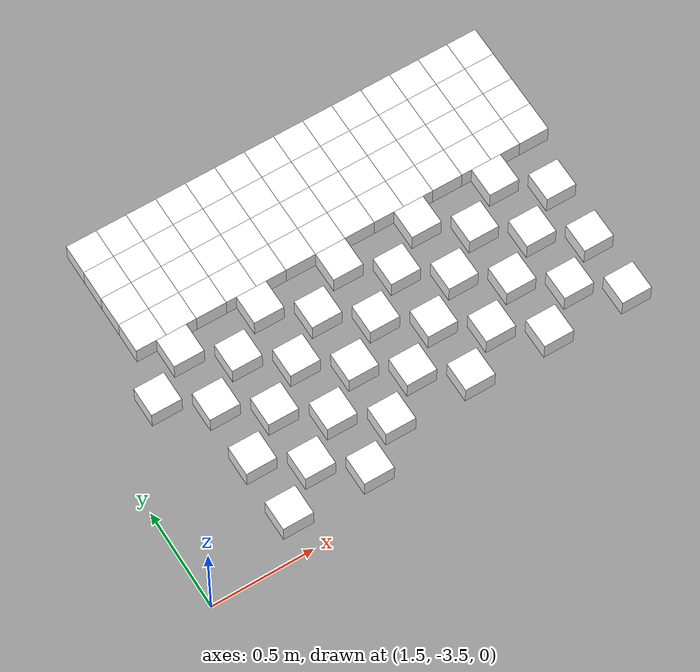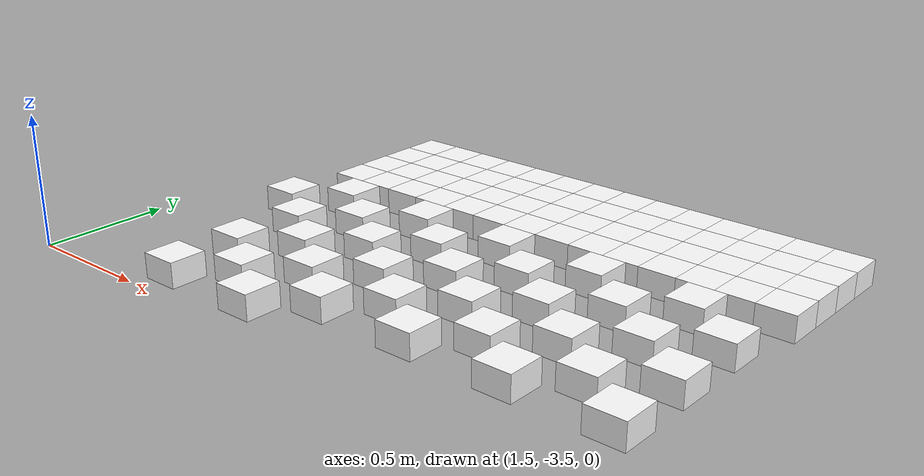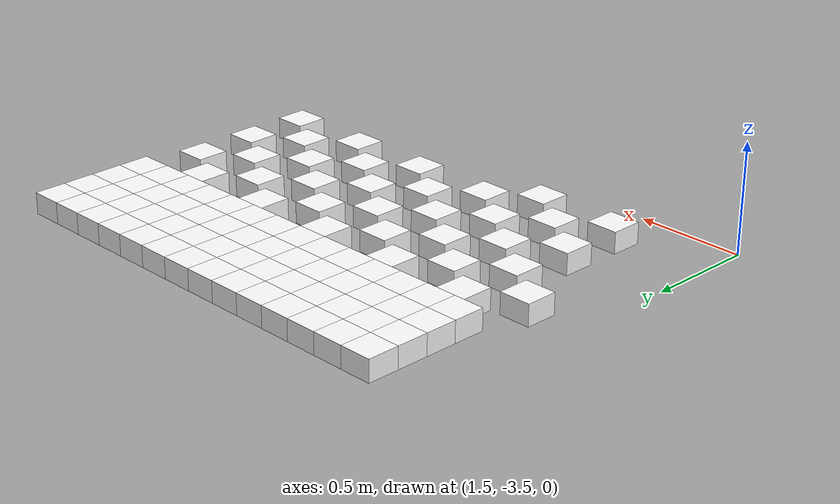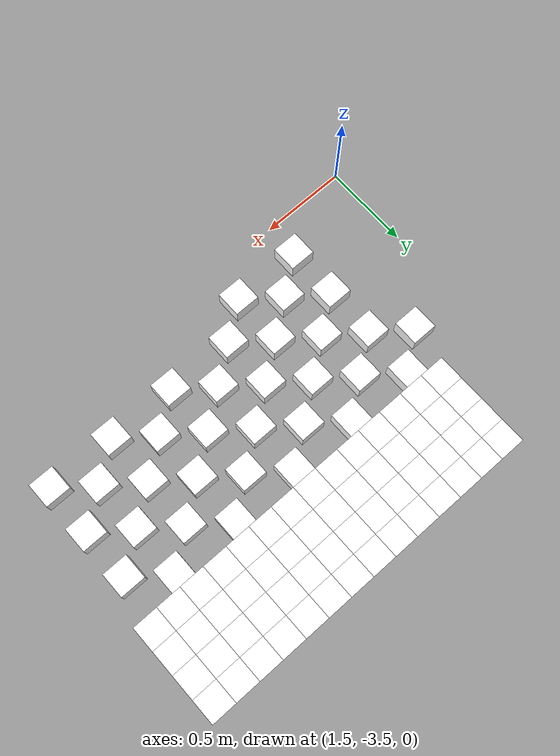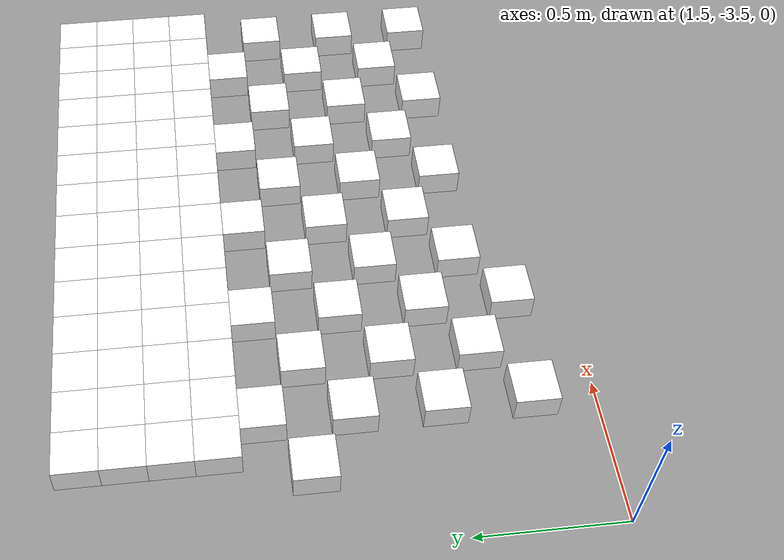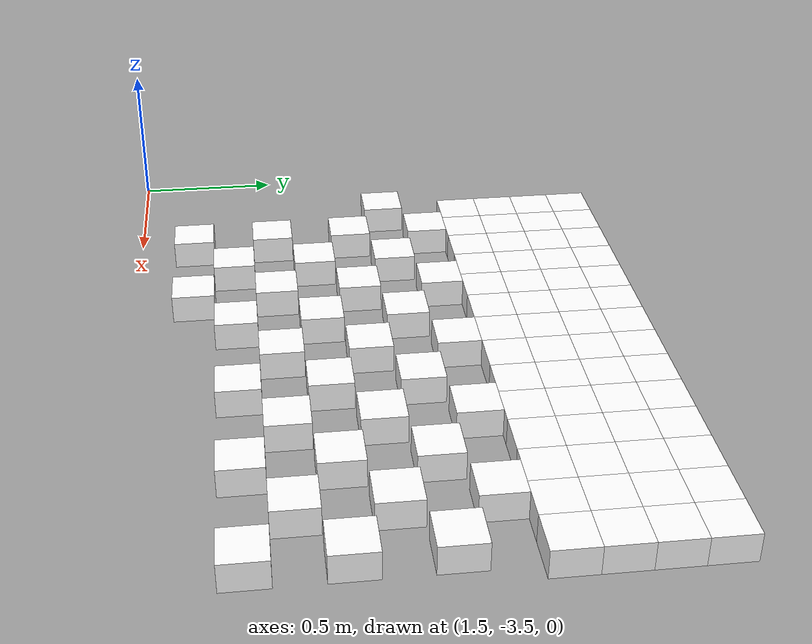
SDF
<sdf version="1.7">
 <world name="default">
  <include><uri>model://sun</uri></include>
  <model name="static_environment">
   <static>true</static>
   <link name="region_536">
    <pose>1.899786431637882 -1.8003470139988216 0.0 0.0 0.0 4.7123</pose>
    <collision name="region_536_collision">
     <geometry><box><size>0.15 0.15 0.1</size></box></geometry>
     <surface><friction><ode><mu>1.0</mu><mu2>1.0</mu2></ode></friction></surface>
    </collision>
    <visual name="region_536_visual">
     <geometry><box><size>0.15 0.15 0.1</size></box></geometry>
     <material><ambient>1.0 1.0 1.0 1.0</ambient><diffuse>1.0 1.0 1.0 1.0</diffuse></material>
    </visual>
   </link>
   <link name="region_537">
    <pose>1.8997730845801963 -1.9503470134050085 0.0 0.0 0.0 4.7123</pose>
    <collision name="region_537_collision">
     <geometry><box><size>0.15 0.15 0.1</size></box></geometry>
     <surface><friction><ode><mu>1.0</mu><mu2>1.0</mu2></ode></friction></surface>
    </collision>
    <visual name="region_537_visual">
     <geometry><box><size>0.15 0.15 0.1</size></box></geometry>
     <material><ambient>1.0 1.0 1.0 1.0</ambient><diffuse>1.0 1.0 1.0 1.0</diffuse></material>
    </visual>
   </link>
   <link name="region_538">
    <pose>1.8997597375225106 -2.100347012811195 0.0 0.0 0.0 4.7123</pose>
    <collision name="region_538_collision">
     <geometry><box><size>0.15 0.15 0.1</size></box></geometry>
     <surface><friction><ode><mu>1.0</mu><mu2>1.0</mu2></ode></friction></surface>
    </collision>
    <visual name="region_538_visual">
     <geometry><box><size>0.15 0.15 0.1</size></box></geometry>
     <material><ambient>1.0 1.0 1.0 1.0</ambient><diffuse>1.0 1.0 1.0 1.0</diffuse></material>
    </visual>
   </link>
   <link name="region_539">
    <pose>1.8997463904648244 -2.250347012217382 0.0 0.0 0.0 4.7123</pose>
    <collision name="region_539_collision">
     <geometry><box><size>0.15 0.15 0.1</size></box></geometry>
     <surface><friction><ode><mu>1.0</mu><mu2>1.0</mu2></ode></friction></surface>
    </collision>
    <visual name="region_539_visual">
     <geometry><box><size>0.15 0.15 0.1</size></box></geometry>
     <material><ambient>1.0 1.0 1.0 1.0</ambient><diffuse>1.0 1.0 1.0 1.0</diffuse></material>
    </visual>
   </link>
   <link name="region_556">
    <pose>2.04978643104407 -1.8003603610565073 0.0 0.0 0.0 4.7123</pose>
    <collision name="region_556_collision">
     <geometry><box><size>0.15 0.15 0.1</size></box></geometry>
     <surface><friction><ode><mu>1.0</mu><mu2>1.0</mu2></ode></friction></surface>
    </collision>
    <visual name="region_556_visual">
     <geometry><box><size>0.15 0.15 0.1</size></box></geometry>
     <material><ambient>1.0 1.0 1.0 1.0</ambient><diffuse>1.0 1.0 1.0 1.0</diffuse></material>
    </visual>
   </link>
   <link name="region_557">
    <pose>2.0497730839863832 -1.9503603604626942 0.0 0.0 0.0 4.7123</pose>
    <collision name="region_557_collision">
     <geometry><box><size>0.15 0.15 0.1</size></box></geometry>
     <surface><friction><ode><mu>1.0</mu><mu2>1.0</mu2></ode></friction></surface>
    </collision>
    <visual name="region_557_visual">
     <geometry><box><size>0.15 0.15 0.1</size></box></geometry>
     <material><ambient>1.0 1.0 1.0 1.0</ambient><diffuse>1.0 1.0 1.0 1.0</diffuse></material>
    </visual>
   </link>
   <link name="region_558">
    <pose>2.0497597369286975 -2.1003603598688807 0.0 0.0 0.0 4.7123</pose>
    <collision name="region_558_collision">
     <geometry><box><size>0.15 0.15 0.1</size></box></geometry>
     <surface><friction><ode><mu>1.0</mu><mu2>1.0</mu2></ode></friction></surface>
    </collision>
    <visual name="region_558_visual">
     <geometry><box><size>0.15 0.15 0.1</size></box></geometry>
     <material><ambient>1.0 1.0 1.0 1.0</ambient><diffuse>1.0 1.0 1.0 1.0</diffuse></material>
    </visual>
   </link>
   <link name="region_559">
    <pose>2.0497463898710118 -2.2503603592750676 0.0 0.0 0.0 4.7123</pose>
    <collision name="region_559_collision">
     <geometry><box><size>0.15 0.15 0.1</size></box></geometry>
     <surface><friction><ode><mu>1.0</mu><mu2>1.0</mu2></ode></friction></surface>
    </collision>
    <visual name="region_559_visual">
     <geometry><box><size>0.15 0.15 0.1</size></box></geometry>
     <material><ambient>1.0 1.0 1.0 1.0</ambient><diffuse>1.0 1.0 1.0 1.0</diffuse></material>
    </visual>
   </link>
   <link name="region_576">
    <pose>2.1997864304502572 -1.800373708114193 0.0 0.0 0.0 4.7123</pose>
    <collision name="region_576_collision">
     <geometry><box><size>0.15 0.15 0.1</size></box></geometry>
     <surface><friction><ode><mu>1.0</mu><mu2>1.0</mu2></ode></friction></surface>
    </collision>
    <visual name="region_576_visual">
     <geometry><box><size>0.15 0.15 0.1</size></box></geometry>
     <material><ambient>1.0 1.0 1.0 1.0</ambient><diffuse>1.0 1.0 1.0 1.0</diffuse></material>
    </visual>
   </link>
   <link name="region_577">
    <pose>2.1997730833925706 -1.95037370752038 0.0 0.0 0.0 4.7123</pose>
    <collision name="region_577_collision">
     <geometry><box><size>0.15 0.15 0.1</size></box></geometry>
     <surface><friction><ode><mu>1.0</mu><mu2>1.0</mu2></ode></friction></surface>
    </collision>
    <visual name="region_577_visual">
     <geometry><box><size>0.15 0.15 0.1</size></box></geometry>
     <material><ambient>1.0 1.0 1.0 1.0</ambient><diffuse>1.0 1.0 1.0 1.0</diffuse></material>
    </visual>
   </link>
   <link name="region_578">
    <pose>2.199759736334885 -2.1003737069265664 0.0 0.0 0.0 4.7123</pose>
    <collision name="region_578_collision">
     <geometry><box><size>0.15 0.15 0.1</size></box></geometry>
     <surface><friction><ode><mu>1.0</mu><mu2>1.0</mu2></ode></friction></surface>
    </collision>
    <visual name="region_578_visual">
     <geometry><box><size>0.15 0.15 0.1</size></box></geometry>
     <material><ambient>1.0 1.0 1.0 1.0</ambient><diffuse>1.0 1.0 1.0 1.0</diffuse></material>
    </visual>
   </link>
   <link name="region_579">
    <pose>2.199746389277199 -2.2503737063327534 0.0 0.0 0.0 4.7123</pose>
    <collision name="region_579_collision">
     <geometry><box><size>0.15 0.15 0.1</size></box></geometry>
     <surface><friction><ode><mu>1.0</mu><mu2>1.0</mu2></ode></friction></surface>
    </collision>
    <visual name="region_579_visual">
     <geometry><box><size>0.15 0.15 0.1</size></box></geometry>
     <material><ambient>1.0 1.0 1.0 1.0</ambient><diffuse>1.0 1.0 1.0 1.0</diffuse></material>
    </visual>
   </link>
   <link name="region_596">
    <pose>2.3497864298564446 -1.8003870551718792 0.0 0.0 0.0 4.7123</pose>
    <collision name="region_596_collision">
     <geometry><box><size>0.15 0.15 0.1</size></box></geometry>
     <surface><friction><ode><mu>1.0</mu><mu2>1.0</mu2></ode></friction></surface>
    </collision>
    <visual name="region_596_visual">
     <geometry><box><size>0.15 0.15 0.1</size></box></geometry>
     <material><ambient>1.0 1.0 1.0 1.0</ambient><diffuse>1.0 1.0 1.0 1.0</diffuse></material>
    </visual>
   </link>
   <link name="region_597">
    <pose>2.349773082798758 -1.9503870545780662 0.0 0.0 0.0 4.7123</pose>
    <collision name="region_597_collision">
     <geometry><box><size>0.15 0.15 0.1</size></box></geometry>
     <surface><friction><ode><mu>1.0</mu><mu2>1.0</mu2></ode></friction></surface>
    </collision>
    <visual name="region_597_visual">
     <geometry><box><size>0.15 0.15 0.1</size></box></geometry>
     <material><ambient>1.0 1.0 1.0 1.0</ambient><diffuse>1.0 1.0 1.0 1.0</diffuse></material>
    </visual>
   </link>
   <link name="region_598">
    <pose>2.349759735741072 -2.1003870539842526 0.0 0.0 0.0 4.7123</pose>
    <collision name="region_598_collision">
     <geometry><box><size>0.15 0.15 0.1</size></box></geometry>
     <surface><friction><ode><mu>1.0</mu><mu2>1.0</mu2></ode></friction></surface>
    </collision>
    <visual name="region_598_visual">
     <geometry><box><size>0.15 0.15 0.1</size></box></geometry>
     <material><ambient>1.0 1.0 1.0 1.0</ambient><diffuse>1.0 1.0 1.0 1.0</diffuse></material>
    </visual>
   </link>
   <link name="region_599">
    <pose>2.3497463886833865 -2.2503870533904395 0.0 0.0 0.0 4.7123</pose>
    <collision name="region_599_collision">
     <geometry><box><size>0.15 0.15 0.1</size></box></geometry>
     <surface><friction><ode><mu>1.0</mu><mu2>1.0</mu2></ode></friction></surface>
    </collision>
    <visual name="region_599_visual">
     <geometry><box><size>0.15 0.15 0.1</size></box></geometry>
     <material><ambient>1.0 1.0 1.0 1.0</ambient><diffuse>1.0 1.0 1.0 1.0</diffuse></material>
    </visual>
   </link>
   <link name="region_616">
    <pose>2.499786429262631 -1.800400402229565 0.0 0.0 0.0 4.7123</pose>
    <collision name="region_616_collision">
     <geometry><box><size>0.15 0.15 0.1</size></box></geometry>
     <surface><friction><ode><mu>1.0</mu><mu2>1.0</mu2></ode></friction></surface>
    </collision>
    <visual name="region_616_visual">
     <geometry><box><size>0.15 0.15 0.1</size></box></geometry>
     <material><ambient>1.0 1.0 1.0 1.0</ambient><diffuse>1.0 1.0 1.0 1.0</diffuse></material>
    </visual>
   </link>
   <link name="region_617">
    <pose>2.4997730822049444 -1.950400401635752 0.0 0.0 0.0 4.7123</pose>
    <collision name="region_617_collision">
     <geometry><box><size>0.15 0.15 0.1</size></box></geometry>
     <surface><friction><ode><mu>1.0</mu><mu2>1.0</mu2></ode></friction></surface>
    </collision>
    <visual name="region_617_visual">
     <geometry><box><size>0.15 0.15 0.1</size></box></geometry>
     <material><ambient>1.0 1.0 1.0 1.0</ambient><diffuse>1.0 1.0 1.0 1.0</diffuse></material>
    </visual>
   </link>
   <link name="region_618">
    <pose>2.4997597351472587 -2.1004004010419384 0.0 0.0 0.0 4.7123</pose>
    <collision name="region_618_collision">
     <geometry><box><size>0.15 0.15 0.1</size></box></geometry>
     <surface><friction><ode><mu>1.0</mu><mu2>1.0</mu2></ode></friction></surface>
    </collision>
    <visual name="region_618_visual">
     <geometry><box><size>0.15 0.15 0.1</size></box></geometry>
     <material><ambient>1.0 1.0 1.0 1.0</ambient><diffuse>1.0 1.0 1.0 1.0</diffuse></material>
    </visual>
   </link>
   <link name="region_619">
    <pose>2.499746388089573 -2.2504004004481253 0.0 0.0 0.0 4.7123</pose>
    <collision name="region_619_collision">
     <geometry><box><size>0.15 0.15 0.1</size></box></geometry>
     <surface><friction><ode><mu>1.0</mu><mu2>1.0</mu2></ode></friction></surface>
    </collision>
    <visual name="region_619_visual">
     <geometry><box><size>0.15 0.15 0.1</size></box></geometry>
     <material><ambient>1.0 1.0 1.0 1.0</ambient><diffuse>1.0 1.0 1.0 1.0</diffuse></material>
    </visual>
   </link>
   <link name="region_636">
    <pose>2.6497864286688184 -1.8004137492872507 0.0 0.0 0.0 4.7123</pose>
    <collision name="region_636_collision">
     <geometry><box><size>0.15 0.15 0.1</size></box></geometry>
     <surface><friction><ode><mu>1.0</mu><mu2>1.0</mu2></ode></friction></surface>
    </collision>
    <visual name="region_636_visual">
     <geometry><box><size>0.15 0.15 0.1</size></box></geometry>
     <material><ambient>1.0 1.0 1.0 1.0</ambient><diffuse>1.0 1.0 1.0 1.0</diffuse></material>
    </visual>
   </link>
   <link name="region_637">
    <pose>2.649773081611132 -1.9504137486934376 0.0 0.0 0.0 4.7123</pose>
    <collision name="region_637_collision">
     <geometry><box><size>0.15 0.15 0.1</size></box></geometry>
     <surface><friction><ode><mu>1.0</mu><mu2>1.0</mu2></ode></friction></surface>
    </collision>
    <visual name="region_637_visual">
     <geometry><box><size>0.15 0.15 0.1</size></box></geometry>
     <material><ambient>1.0 1.0 1.0 1.0</ambient><diffuse>1.0 1.0 1.0 1.0</diffuse></material>
    </visual>
   </link>
   <link name="region_638">
    <pose>2.649759734553446 -2.100413748099624 0.0 0.0 0.0 4.7123</pose>
    <collision name="region_638_collision">
     <geometry><box><size>0.15 0.15 0.1</size></box></geometry>
     <surface><friction><ode><mu>1.0</mu><mu2>1.0</mu2></ode></friction></surface>
    </collision>
    <visual name="region_638_visual">
     <geometry><box><size>0.15 0.15 0.1</size></box></geometry>
     <material><ambient>1.0 1.0 1.0 1.0</ambient><diffuse>1.0 1.0 1.0 1.0</diffuse></material>
    </visual>
   </link>
   <link name="region_639">
    <pose>2.6497463874957603 -2.250413747505811 0.0 0.0 0.0 4.7123</pose>
    <collision name="region_639_collision">
     <geometry><box><size>0.15 0.15 0.1</size></box></geometry>
     <surface><friction><ode><mu>1.0</mu><mu2>1.0</mu2></ode></friction></surface>
    </collision>
    <visual name="region_639_visual">
     <geometry><box><size>0.15 0.15 0.1</size></box></geometry>
     <material><ambient>1.0 1.0 1.0 1.0</ambient><diffuse>1.0 1.0 1.0 1.0</diffuse></material>
    </visual>
   </link>
   <link name="region_656">
    <pose>2.7997864280750058 -1.800427096344937 0.0 0.0 0.0 4.7123</pose>
    <collision name="region_656_collision">
     <geometry><box><size>0.15 0.15 0.1</size></box></geometry>
     <surface><friction><ode><mu>1.0</mu><mu2>1.0</mu2></ode></friction></surface>
    </collision>
    <visual name="region_656_visual">
     <geometry><box><size>0.15 0.15 0.1</size></box></geometry>
     <material><ambient>1.0 1.0 1.0 1.0</ambient><diffuse>1.0 1.0 1.0 1.0</diffuse></material>
    </visual>
   </link>
   <link name="region_657">
    <pose>2.799773081017319 -1.9504270957511238 0.0 0.0 0.0 4.7123</pose>
    <collision name="region_657_collision">
     <geometry><box><size>0.15 0.15 0.1</size></box></geometry>
     <surface><friction><ode><mu>1.0</mu><mu2>1.0</mu2></ode></friction></surface>
    </collision>
    <visual name="region_657_visual">
     <geometry><box><size>0.15 0.15 0.1</size></box></geometry>
     <material><ambient>1.0 1.0 1.0 1.0</ambient><diffuse>1.0 1.0 1.0 1.0</diffuse></material>
    </visual>
   </link>
   <link name="region_658">
    <pose>2.7997597339596334 -2.1004270951573103 0.0 0.0 0.0 4.7123</pose>
    <collision name="region_658_collision">
     <geometry><box><size>0.15 0.15 0.1</size></box></geometry>
     <surface><friction><ode><mu>1.0</mu><mu2>1.0</mu2></ode></friction></surface>
    </collision>
    <visual name="region_658_visual">
     <geometry><box><size>0.15 0.15 0.1</size></box></geometry>
     <material><ambient>1.0 1.0 1.0 1.0</ambient><diffuse>1.0 1.0 1.0 1.0</diffuse></material>
    </visual>
   </link>
   <link name="region_659">
    <pose>2.7997463869019477 -2.250427094563497 0.0 0.0 0.0 4.7123</pose>
    <collision name="region_659_collision">
     <geometry><box><size>0.15 0.15 0.1</size></box></geometry>
     <surface><friction><ode><mu>1.0</mu><mu2>1.0</mu2></ode></friction></surface>
    </collision>
    <visual name="region_659_visual">
     <geometry><box><size>0.15 0.15 0.1</size></box></geometry>
     <material><ambient>1.0 1.0 1.0 1.0</ambient><diffuse>1.0 1.0 1.0 1.0</diffuse></material>
    </visual>
   </link>
   <link name="region_676">
    <pose>2.949786427481193 -1.8004404434026227 0.0 0.0 0.0 4.7123</pose>
    <collision name="region_676_collision">
     <geometry><box><size>0.15 0.15 0.1</size></box></geometry>
     <surface><friction><ode><mu>1.0</mu><mu2>1.0</mu2></ode></friction></surface>
    </collision>
    <visual name="region_676_visual">
     <geometry><box><size>0.15 0.15 0.1</size></box></geometry>
     <material><ambient>1.0 1.0 1.0 1.0</ambient><diffuse>1.0 1.0 1.0 1.0</diffuse></material>
    </visual>
   </link>
   <link name="region_677">
    <pose>2.9497730804235065 -1.9504404428088096 0.0 0.0 0.0 4.7123</pose>
    <collision name="region_677_collision">
     <geometry><box><size>0.15 0.15 0.1</size></box></geometry>
     <surface><friction><ode><mu>1.0</mu><mu2>1.0</mu2></ode></friction></surface>
    </collision>
    <visual name="region_677_visual">
     <geometry><box><size>0.15 0.15 0.1</size></box></geometry>
     <material><ambient>1.0 1.0 1.0 1.0</ambient><diffuse>1.0 1.0 1.0 1.0</diffuse></material>
    </visual>
   </link>
   <link name="region_678">
    <pose>2.9497597333658208 -2.100440442214996 0.0 0.0 0.0 4.7123</pose>
    <collision name="region_678_collision">
     <geometry><box><size>0.15 0.15 0.1</size></box></geometry>
     <surface><friction><ode><mu>1.0</mu><mu2>1.0</mu2></ode></friction></surface>
    </collision>
    <visual name="region_678_visual">
     <geometry><box><size>0.15 0.15 0.1</size></box></geometry>
     <material><ambient>1.0 1.0 1.0 1.0</ambient><diffuse>1.0 1.0 1.0 1.0</diffuse></material>
    </visual>
   </link>
   <link name="region_679">
    <pose>2.949746386308135 -2.250440441621183 0.0 0.0 0.0 4.7123</pose>
    <collision name="region_679_collision">
     <geometry><box><size>0.15 0.15 0.1</size></box></geometry>
     <surface><friction><ode><mu>1.0</mu><mu2>1.0</mu2></ode></friction></surface>
    </collision>
    <visual name="region_679_visual">
     <geometry><box><size>0.15 0.15 0.1</size></box></geometry>
     <material><ambient>1.0 1.0 1.0 1.0</ambient><diffuse>1.0 1.0 1.0 1.0</diffuse></material>
    </visual>
   </link>
   <link name="region_696">
    <pose>3.0997864268873805 -1.8004537904603084 0.0 0.0 0.0 4.7123</pose>
    <collision name="region_696_collision">
     <geometry><box><size>0.15 0.15 0.1</size></box></geometry>
     <surface><friction><ode><mu>1.0</mu><mu2>1.0</mu2></ode></friction></surface>
    </collision>
    <visual name="region_696_visual">
     <geometry><box><size>0.15 0.15 0.1</size></box></geometry>
     <material><ambient>1.0 1.0 1.0 1.0</ambient><diffuse>1.0 1.0 1.0 1.0</diffuse></material>
    </visual>
   </link>
   <link name="region_697">
    <pose>3.099773079829694 -1.9504537898664953 0.0 0.0 0.0 4.7123</pose>
    <collision name="region_697_collision">
     <geometry><box><size>0.15 0.15 0.1</size></box></geometry>
     <surface><friction><ode><mu>1.0</mu><mu2>1.0</mu2></ode></friction></surface>
    </collision>
    <visual name="region_697_visual">
     <geometry><box><size>0.15 0.15 0.1</size></box></geometry>
     <material><ambient>1.0 1.0 1.0 1.0</ambient><diffuse>1.0 1.0 1.0 1.0</diffuse></material>
    </visual>
   </link>
   <link name="region_698">
    <pose>3.099759732772008 -2.100453789272682 0.0 0.0 0.0 4.7123</pose>
    <collision name="region_698_collision">
     <geometry><box><size>0.15 0.15 0.1</size></box></geometry>
     <surface><friction><ode><mu>1.0</mu><mu2>1.0</mu2></ode></friction></surface>
    </collision>
    <visual name="region_698_visual">
     <geometry><box><size>0.15 0.15 0.1</size></box></geometry>
     <material><ambient>1.0 1.0 1.0 1.0</ambient><diffuse>1.0 1.0 1.0 1.0</diffuse></material>
    </visual>
   </link>
   <link name="region_699">
    <pose>3.0997463857143224 -2.2504537886788687 0.0 0.0 0.0 4.7123</pose>
    <collision name="region_699_collision">
     <geometry><box><size>0.15 0.15 0.1</size></box></geometry>
     <surface><friction><ode><mu>1.0</mu><mu2>1.0</mu2></ode></friction></surface>
    </collision>
    <visual name="region_699_visual">
     <geometry><box><size>0.15 0.15 0.1</size></box></geometry>
     <material><ambient>1.0 1.0 1.0 1.0</ambient><diffuse>1.0 1.0 1.0 1.0</diffuse></material>
    </visual>
   </link>
   <link name="region_716">
    <pose>3.249786426293567 -1.8004671375179946 0.0 0.0 0.0 4.7123</pose>
    <collision name="region_716_collision">
     <geometry><box><size>0.15 0.15 0.1</size></box></geometry>
     <surface><friction><ode><mu>1.0</mu><mu2>1.0</mu2></ode></friction></surface>
    </collision>
    <visual name="region_716_visual">
     <geometry><box><size>0.15 0.15 0.1</size></box></geometry>
     <material><ambient>1.0 1.0 1.0 1.0</ambient><diffuse>1.0 1.0 1.0 1.0</diffuse></material>
    </visual>
   </link>
   <link name="region_717">
    <pose>3.2497730792358803 -1.9504671369241815 0.0 0.0 0.0 4.7123</pose>
    <collision name="region_717_collision">
     <geometry><box><size>0.15 0.15 0.1</size></box></geometry>
     <surface><friction><ode><mu>1.0</mu><mu2>1.0</mu2></ode></friction></surface>
    </collision>
    <visual name="region_717_visual">
     <geometry><box><size>0.15 0.15 0.1</size></box></geometry>
     <material><ambient>1.0 1.0 1.0 1.0</ambient><diffuse>1.0 1.0 1.0 1.0</diffuse></material>
    </visual>
   </link>
   <link name="region_718">
    <pose>3.2497597321781946 -2.100467136330368 0.0 0.0 0.0 4.7123</pose>
    <collision name="region_718_collision">
     <geometry><box><size>0.15 0.15 0.1</size></box></geometry>
     <surface><friction><ode><mu>1.0</mu><mu2>1.0</mu2></ode></friction></surface>
    </collision>
    <visual name="region_718_visual">
     <geometry><box><size>0.15 0.15 0.1</size></box></geometry>
     <material><ambient>1.0 1.0 1.0 1.0</ambient><diffuse>1.0 1.0 1.0 1.0</diffuse></material>
    </visual>
   </link>
   <link name="region_719">
    <pose>3.249746385120509 -2.250467135736555 0.0 0.0 0.0 4.7123</pose>
    <collision name="region_719_collision">
     <geometry><box><size>0.15 0.15 0.1</size></box></geometry>
     <surface><friction><ode><mu>1.0</mu><mu2>1.0</mu2></ode></friction></surface>
    </collision>
    <visual name="region_719_visual">
     <geometry><box><size>0.15 0.15 0.1</size></box></geometry>
     <material><ambient>1.0 1.0 1.0 1.0</ambient><diffuse>1.0 1.0 1.0 1.0</diffuse></material>
    </visual>
   </link>
   <link name="region_736">
    <pose>3.3997864256997543 -1.8004804845756803 0.0 0.0 0.0 4.7123</pose>
    <collision name="region_736_collision">
     <geometry><box><size>0.15 0.15 0.1</size></box></geometry>
     <surface><friction><ode><mu>1.0</mu><mu2>1.0</mu2></ode></friction></surface>
    </collision>
    <visual name="region_736_visual">
     <geometry><box><size>0.15 0.15 0.1</size></box></geometry>
     <material><ambient>1.0 1.0 1.0 1.0</ambient><diffuse>1.0 1.0 1.0 1.0</diffuse></material>
    </visual>
   </link>
   <link name="region_737">
    <pose>3.3997730786420677 -1.9504804839818672 0.0 0.0 0.0 4.7123</pose>
    <collision name="region_737_collision">
     <geometry><box><size>0.15 0.15 0.1</size></box></geometry>
     <surface><friction><ode><mu>1.0</mu><mu2>1.0</mu2></ode></friction></surface>
    </collision>
    <visual name="region_737_visual">
     <geometry><box><size>0.15 0.15 0.1</size></box></geometry>
     <material><ambient>1.0 1.0 1.0 1.0</ambient><diffuse>1.0 1.0 1.0 1.0</diffuse></material>
    </visual>
   </link>
   <link name="region_738">
    <pose>3.399759731584382 -2.1004804833880537 0.0 0.0 0.0 4.7123</pose>
    <collision name="region_738_collision">
     <geometry><box><size>0.15 0.15 0.1</size></box></geometry>
     <surface><friction><ode><mu>1.0</mu><mu2>1.0</mu2></ode></friction></surface>
    </collision>
    <visual name="region_738_visual">
     <geometry><box><size>0.15 0.15 0.1</size></box></geometry>
     <material><ambient>1.0 1.0 1.0 1.0</ambient><diffuse>1.0 1.0 1.0 1.0</diffuse></material>
    </visual>
   </link>
   <link name="region_739">
    <pose>3.399746384526696 -2.2504804827942406 0.0 0.0 0.0 4.7123</pose>
    <collision name="region_739_collision">
     <geometry><box><size>0.15 0.15 0.1</size></box></geometry>
     <surface><friction><ode><mu>1.0</mu><mu2>1.0</mu2></ode></friction></surface>
    </collision>
    <visual name="region_739_visual">
     <geometry><box><size>0.15 0.15 0.1</size></box></geometry>
     <material><ambient>1.0 1.0 1.0 1.0</ambient><diffuse>1.0 1.0 1.0 1.0</diffuse></material>
    </visual>
   </link>
   <link name="region_756">
    <pose>3.5497864251059417 -1.800493831633366 0.0 0.0 0.0 4.7123</pose>
    <collision name="region_756_collision">
     <geometry><box><size>0.15 0.15 0.1</size></box></geometry>
     <surface><friction><ode><mu>1.0</mu><mu2>1.0</mu2></ode></friction></surface>
    </collision>
    <visual name="region_756_visual">
     <geometry><box><size>0.15 0.15 0.1</size></box></geometry>
     <material><ambient>1.0 1.0 1.0 1.0</ambient><diffuse>1.0 1.0 1.0 1.0</diffuse></material>
    </visual>
   </link>
   <link name="region_757">
    <pose>3.549773078048255 -1.950493831039553 0.0 0.0 0.0 4.7123</pose>
    <collision name="region_757_collision">
     <geometry><box><size>0.15 0.15 0.1</size></box></geometry>
     <surface><friction><ode><mu>1.0</mu><mu2>1.0</mu2></ode></friction></surface>
    </collision>
    <visual name="region_757_visual">
     <geometry><box><size>0.15 0.15 0.1</size></box></geometry>
     <material><ambient>1.0 1.0 1.0 1.0</ambient><diffuse>1.0 1.0 1.0 1.0</diffuse></material>
    </visual>
   </link>
   <link name="region_758">
    <pose>3.5497597309905693 -2.1004938304457395 0.0 0.0 0.0 4.7123</pose>
    <collision name="region_758_collision">
     <geometry><box><size>0.15 0.15 0.1</size></box></geometry>
     <surface><friction><ode><mu>1.0</mu><mu2>1.0</mu2></ode></friction></surface>
    </collision>
    <visual name="region_758_visual">
     <geometry><box><size>0.15 0.15 0.1</size></box></geometry>
     <material><ambient>1.0 1.0 1.0 1.0</ambient><diffuse>1.0 1.0 1.0 1.0</diffuse></material>
    </visual>
   </link>
   <link name="region_759">
    <pose>3.5497463839328836 -2.2504938298519264 0.0 0.0 0.0 4.7123</pose>
    <collision name="region_759_collision">
     <geometry><box><size>0.15 0.15 0.1</size></box></geometry>
     <surface><friction><ode><mu>1.0</mu><mu2>1.0</mu2></ode></friction></surface>
    </collision>
    <visual name="region_759_visual">
     <geometry><box><size>0.15 0.15 0.1</size></box></geometry>
     <material><ambient>1.0 1.0 1.0 1.0</ambient><diffuse>1.0 1.0 1.0 1.0</diffuse></material>
    </visual>
   </link>
   <link name="region_776">
    <pose>3.699786424512129 -1.8005071786910518 0.0 0.0 0.0 4.7123</pose>
    <collision name="region_776_collision">
     <geometry><box><size>0.15 0.15 0.1</size></box></geometry>
     <surface><friction><ode><mu>1.0</mu><mu2>1.0</mu2></ode></friction></surface>
    </collision>
    <visual name="region_776_visual">
     <geometry><box><size>0.15 0.15 0.1</size></box></geometry>
     <material><ambient>1.0 1.0 1.0 1.0</ambient><diffuse>1.0 1.0 1.0 1.0</diffuse></material>
    </visual>
   </link>
   <link name="region_777">
    <pose>3.6997730774544424 -1.9505071780972387 0.0 0.0 0.0 4.7123</pose>
    <collision name="region_777_collision">
     <geometry><box><size>0.15 0.15 0.1</size></box></geometry>
     <surface><friction><ode><mu>1.0</mu><mu2>1.0</mu2></ode></friction></surface>
    </collision>
    <visual name="region_777_visual">
     <geometry><box><size>0.15 0.15 0.1</size></box></geometry>
     <material><ambient>1.0 1.0 1.0 1.0</ambient><diffuse>1.0 1.0 1.0 1.0</diffuse></material>
    </visual>
   </link>
   <link name="region_778">
    <pose>3.6997597303967567 -2.100507177503425 0.0 0.0 0.0 4.7123</pose>
    <collision name="region_778_collision">
     <geometry><box><size>0.15 0.15 0.1</size></box></geometry>
     <surface><friction><ode><mu>1.0</mu><mu2>1.0</mu2></ode></friction></surface>
    </collision>
    <visual name="region_778_visual">
     <geometry><box><size>0.15 0.15 0.1</size></box></geometry>
     <material><ambient>1.0 1.0 1.0 1.0</ambient><diffuse>1.0 1.0 1.0 1.0</diffuse></material>
    </visual>
   </link>
   <link name="region_779">
    <pose>3.699746383339071 -2.250507176909612 0.0 0.0 0.0 4.7123</pose>
    <collision name="region_779_collision">
     <geometry><box><size>0.15 0.15 0.1</size></box></geometry>
     <surface><friction><ode><mu>1.0</mu><mu2>1.0</mu2></ode></friction></surface>
    </collision>
    <visual name="region_779_visual">
     <geometry><box><size>0.15 0.15 0.1</size></box></geometry>
     <material><ambient>1.0 1.0 1.0 1.0</ambient><diffuse>1.0 1.0 1.0 1.0</diffuse></material>
    </visual>
   </link>
   <link name="region_796">
    <pose>3.8497864239183164 -1.800520525748738 0.0 0.0 0.0 4.7123</pose>
    <collision name="region_796_collision">
     <geometry><box><size>0.15 0.15 0.1</size></box></geometry>
     <surface><friction><ode><mu>1.0</mu><mu2>1.0</mu2></ode></friction></surface>
    </collision>
    <visual name="region_796_visual">
     <geometry><box><size>0.15 0.15 0.1</size></box></geometry>
     <material><ambient>1.0 1.0 1.0 1.0</ambient><diffuse>1.0 1.0 1.0 1.0</diffuse></material>
    </visual>
   </link>
   <link name="region_797">
    <pose>3.8497730768606298 -1.950520525154925 0.0 0.0 0.0 4.7123</pose>
    <collision name="region_797_collision">
     <geometry><box><size>0.15 0.15 0.1</size></box></geometry>
     <surface><friction><ode><mu>1.0</mu><mu2>1.0</mu2></ode></friction></surface>
    </collision>
    <visual name="region_797_visual">
     <geometry><box><size>0.15 0.15 0.1</size></box></geometry>
     <material><ambient>1.0 1.0 1.0 1.0</ambient><diffuse>1.0 1.0 1.0 1.0</diffuse></material>
    </visual>
   </link>
   <link name="region_798">
    <pose>3.849759729802944 -2.1005205245611114 0.0 0.0 0.0 4.7123</pose>
    <collision name="region_798_collision">
     <geometry><box><size>0.15 0.15 0.1</size></box></geometry>
     <surface><friction><ode><mu>1.0</mu><mu2>1.0</mu2></ode></friction></surface>
    </collision>
    <visual name="region_798_visual">
     <geometry><box><size>0.15 0.15 0.1</size></box></geometry>
     <material><ambient>1.0 1.0 1.0 1.0</ambient><diffuse>1.0 1.0 1.0 1.0</diffuse></material>
    </visual>
   </link>
   <link name="region_799">
    <pose>3.8497463827452583 -2.2505205239672983 0.0 0.0 0.0 4.7123</pose>
    <collision name="region_799_collision">
     <geometry><box><size>0.15 0.15 0.1</size></box></geometry>
     <surface><friction><ode><mu>1.0</mu><mu2>1.0</mu2></ode></friction></surface>
    </collision>
    <visual name="region_799_visual">
     <geometry><box><size>0.15 0.15 0.1</size></box></geometry>
     <material><ambient>1.0 1.0 1.0 1.0</ambient><diffuse>1.0 1.0 1.0 1.0</diffuse></material>
    </visual>
   </link>
   <link name="region_895">
    <pose>1.7997196967453308 -2.550338112991299 0.0 0.0 0.0 4.7123</pose>
    <collision name="region_895_collision">
     <geometry><box><size>0.15 0.15 0.1</size></box></geometry>
     <surface><friction><ode><mu>1.0</mu><mu2>1.0</mu2></ode></friction></surface>
    </collision>
    <visual name="region_895_visual">
     <geometry><box><size>0.15 0.15 0.1</size></box></geometry>
     <material><ambient>1.0 1.0 1.0 1.0</ambient><diffuse>1.0 1.0 1.0 1.0</diffuse></material>
    </visual>
   </link>
   <link name="region_900">
    <pose>1.9997330430112656 -2.4003559096620264 0.0 0.0 0.0 4.7123</pose>
    <collision name="region_900_collision">
     <geometry><box><size>0.15 0.15 0.1</size></box></geometry>
     <surface><friction><ode><mu>1.0</mu><mu2>1.0</mu2></ode></friction></surface>
    </collision>
    <visual name="region_900_visual">
     <geometry><box><size>0.15 0.15 0.1</size></box></geometry>
     <material><ambient>1.0 1.0 1.0 1.0</ambient><diffuse>1.0 1.0 1.0 1.0</diffuse></material>
    </visual>
   </link>
   <link name="region_901">
    <pose>1.9997063488958937 -2.7003559084744 0.0 0.0 0.0 4.7123</pose>
    <collision name="region_901_collision">
     <geometry><box><size>0.15 0.15 0.1</size></box></geometry>
     <surface><friction><ode><mu>1.0</mu><mu2>1.0</mu2></ode></friction></surface>
    </collision>
    <visual name="region_901_visual">
     <geometry><box><size>0.15 0.15 0.1</size></box></geometry>
     <material><ambient>1.0 1.0 1.0 1.0</ambient><diffuse>1.0 1.0 1.0 1.0</diffuse></material>
    </visual>
   </link>
   <link name="region_902">
    <pose>1.9996796547805222 -3.0003559072867736 0.0 0.0 0.0 4.7123</pose>
    <collision name="region_902_collision">
     <geometry><box><size>0.15 0.15 0.1</size></box></geometry>
     <surface><friction><ode><mu>1.0</mu><mu2>1.0</mu2></ode></friction></surface>
    </collision>
    <visual name="region_902_visual">
     <geometry><box><size>0.15 0.15 0.1</size></box></geometry>
     <material><ambient>1.0 1.0 1.0 1.0</ambient><diffuse>1.0 1.0 1.0 1.0</diffuse></material>
    </visual>
   </link>
   <link name="region_903">
    <pose>1.9996529606651503 -3.300355906099147 0.0 0.0 0.0 4.7123</pose>
    <collision name="region_903_collision">
     <geometry><box><size>0.15 0.15 0.1</size></box></geometry>
     <surface><friction><ode><mu>1.0</mu><mu2>1.0</mu2></ode></friction></surface>
    </collision>
    <visual name="region_903_visual">
     <geometry><box><size>0.15 0.15 0.1</size></box></geometry>
     <material><ambient>1.0 1.0 1.0 1.0</ambient><diffuse>1.0 1.0 1.0 1.0</diffuse></material>
    </visual>
   </link>
   <link name="region_905">
    <pose>2.1997196951618294 -2.5503737051451276 0.0 0.0 0.0 4.7123</pose>
    <collision name="region_905_collision">
     <geometry><box><size>0.15 0.15 0.1</size></box></geometry>
     <surface><friction><ode><mu>1.0</mu><mu2>1.0</mu2></ode></friction></surface>
    </collision>
    <visual name="region_905_visual">
     <geometry><box><size>0.15 0.15 0.1</size></box></geometry>
     <material><ambient>1.0 1.0 1.0 1.0</ambient><diffuse>1.0 1.0 1.0 1.0</diffuse></material>
    </visual>
   </link>
   <link name="region_906">
    <pose>2.199693001046458 -2.850373703957501 0.0 0.0 0.0 4.7123</pose>
    <collision name="region_906_collision">
     <geometry><box><size>0.15 0.15 0.1</size></box></geometry>
     <surface><friction><ode><mu>1.0</mu><mu2>1.0</mu2></ode></friction></surface>
    </collision>
    <visual name="region_906_visual">
     <geometry><box><size>0.15 0.15 0.1</size></box></geometry>
     <material><ambient>1.0 1.0 1.0 1.0</ambient><diffuse>1.0 1.0 1.0 1.0</diffuse></material>
    </visual>
   </link>
   <link name="region_907">
    <pose>2.1996663069310856 -3.150373702769875 0.0 0.0 0.0 4.7123</pose>
    <collision name="region_907_collision">
     <geometry><box><size>0.15 0.15 0.1</size></box></geometry>
     <surface><friction><ode><mu>1.0</mu><mu2>1.0</mu2></ode></friction></surface>
    </collision>
    <visual name="region_907_visual">
     <geometry><box><size>0.15 0.15 0.1</size></box></geometry>
     <material><ambient>1.0 1.0 1.0 1.0</ambient><diffuse>1.0 1.0 1.0 1.0</diffuse></material>
    </visual>
   </link>
   <link name="region_910">
    <pose>2.399733041427764 -2.4003915018158555 0.0 0.0 0.0 4.7123</pose>
    <collision name="region_910_collision">
     <geometry><box><size>0.15 0.15 0.1</size></box></geometry>
     <surface><friction><ode><mu>1.0</mu><mu2>1.0</mu2></ode></friction></surface>
    </collision>
    <visual name="region_910_visual">
     <geometry><box><size>0.15 0.15 0.1</size></box></geometry>
     <material><ambient>1.0 1.0 1.0 1.0</ambient><diffuse>1.0 1.0 1.0 1.0</diffuse></material>
    </visual>
   </link>
   <link name="region_911">
    <pose>2.3997063473123923 -2.7003915006282293 0.0 0.0 0.0 4.7123</pose>
    <collision name="region_911_collision">
     <geometry><box><size>0.15 0.15 0.1</size></box></geometry>
     <surface><friction><ode><mu>1.0</mu><mu2>1.0</mu2></ode></friction></surface>
    </collision>
    <visual name="region_911_visual">
     <geometry><box><size>0.15 0.15 0.1</size></box></geometry>
     <material><ambient>1.0 1.0 1.0 1.0</ambient><diffuse>1.0 1.0 1.0 1.0</diffuse></material>
    </visual>
   </link>
   <link name="region_912">
    <pose>2.39967965319702 -3.0003914994406027 0.0 0.0 0.0 4.7123</pose>
    <collision name="region_912_collision">
     <geometry><box><size>0.15 0.15 0.1</size></box></geometry>
     <surface><friction><ode><mu>1.0</mu><mu2>1.0</mu2></ode></friction></surface>
    </collision>
    <visual name="region_912_visual">
     <geometry><box><size>0.15 0.15 0.1</size></box></geometry>
     <material><ambient>1.0 1.0 1.0 1.0</ambient><diffuse>1.0 1.0 1.0 1.0</diffuse></material>
    </visual>
   </link>
   <link name="region_913">
    <pose>2.3996529590816484 -3.300391498252976 0.0 0.0 0.0 4.7123</pose>
    <collision name="region_913_collision">
     <geometry><box><size>0.15 0.15 0.1</size></box></geometry>
     <surface><friction><ode><mu>1.0</mu><mu2>1.0</mu2></ode></friction></surface>
    </collision>
    <visual name="region_913_visual">
     <geometry><box><size>0.15 0.15 0.1</size></box></geometry>
     <material><ambient>1.0 1.0 1.0 1.0</ambient><diffuse>1.0 1.0 1.0 1.0</diffuse></material>
    </visual>
   </link>
   <link name="region_915">
    <pose>2.5997196935783276 -2.5504092972989567 0.0 0.0 0.0 4.7123</pose>
    <collision name="region_915_collision">
     <geometry><box><size>0.15 0.15 0.1</size></box></geometry>
     <surface><friction><ode><mu>1.0</mu><mu2>1.0</mu2></ode></friction></surface>
    </collision>
    <visual name="region_915_visual">
     <geometry><box><size>0.15 0.15 0.1</size></box></geometry>
     <material><ambient>1.0 1.0 1.0 1.0</ambient><diffuse>1.0 1.0 1.0 1.0</diffuse></material>
    </visual>
   </link>
   <link name="region_916">
    <pose>2.599692999462956 -2.85040929611133 0.0 0.0 0.0 4.7123</pose>
    <collision name="region_916_collision">
     <geometry><box><size>0.15 0.15 0.1</size></box></geometry>
     <surface><friction><ode><mu>1.0</mu><mu2>1.0</mu2></ode></friction></surface>
    </collision>
    <visual name="region_916_visual">
     <geometry><box><size>0.15 0.15 0.1</size></box></geometry>
     <material><ambient>1.0 1.0 1.0 1.0</ambient><diffuse>1.0 1.0 1.0 1.0</diffuse></material>
    </visual>
   </link>
   <link name="region_917">
    <pose>2.5996663053475837 -3.150409294923704 0.0 0.0 0.0 4.7123</pose>
    <collision name="region_917_collision">
     <geometry><box><size>0.15 0.15 0.1</size></box></geometry>
     <surface><friction><ode><mu>1.0</mu><mu2>1.0</mu2></ode></friction></surface>
    </collision>
    <visual name="region_917_visual">
     <geometry><box><size>0.15 0.15 0.1</size></box></geometry>
     <material><ambient>1.0 1.0 1.0 1.0</ambient><diffuse>1.0 1.0 1.0 1.0</diffuse></material>
    </visual>
   </link>
   <link name="region_920">
    <pose>2.799733039844263 -2.4004270939696846 0.0 0.0 0.0 4.7123</pose>
    <collision name="region_920_collision">
     <geometry><box><size>0.15 0.15 0.1</size></box></geometry>
     <surface><friction><ode><mu>1.0</mu><mu2>1.0</mu2></ode></friction></surface>
    </collision>
    <visual name="region_920_visual">
     <geometry><box><size>0.15 0.15 0.1</size></box></geometry>
     <material><ambient>1.0 1.0 1.0 1.0</ambient><diffuse>1.0 1.0 1.0 1.0</diffuse></material>
    </visual>
   </link>
   <link name="region_921">
    <pose>2.7997063457288913 -2.7004270927820584 0.0 0.0 0.0 4.7123</pose>
    <collision name="region_921_collision">
     <geometry><box><size>0.15 0.15 0.1</size></box></geometry>
     <surface><friction><ode><mu>1.0</mu><mu2>1.0</mu2></ode></friction></surface>
    </collision>
    <visual name="region_921_visual">
     <geometry><box><size>0.15 0.15 0.1</size></box></geometry>
     <material><ambient>1.0 1.0 1.0 1.0</ambient><diffuse>1.0 1.0 1.0 1.0</diffuse></material>
    </visual>
   </link>
   <link name="region_922">
    <pose>2.799679651613519 -3.0004270915944318 0.0 0.0 0.0 4.7123</pose>
    <collision name="region_922_collision">
     <geometry><box><size>0.15 0.15 0.1</size></box></geometry>
     <surface><friction><ode><mu>1.0</mu><mu2>1.0</mu2></ode></friction></surface>
    </collision>
    <visual name="region_922_visual">
     <geometry><box><size>0.15 0.15 0.1</size></box></geometry>
     <material><ambient>1.0 1.0 1.0 1.0</ambient><diffuse>1.0 1.0 1.0 1.0</diffuse></material>
    </visual>
   </link>
   <link name="region_925">
    <pose>2.9997196919948266 -2.550444889452786 0.0 0.0 0.0 4.7123</pose>
    <collision name="region_925_collision">
     <geometry><box><size>0.15 0.15 0.1</size></box></geometry>
     <surface><friction><ode><mu>1.0</mu><mu2>1.0</mu2></ode></friction></surface>
    </collision>
    <visual name="region_925_visual">
     <geometry><box><size>0.15 0.15 0.1</size></box></geometry>
     <material><ambient>1.0 1.0 1.0 1.0</ambient><diffuse>1.0 1.0 1.0 1.0</diffuse></material>
    </visual>
   </link>
   <link name="region_926">
    <pose>2.999692997879455 -2.850444888265159 0.0 0.0 0.0 4.7123</pose>
    <collision name="region_926_collision">
     <geometry><box><size>0.15 0.15 0.1</size></box></geometry>
     <surface><friction><ode><mu>1.0</mu><mu2>1.0</mu2></ode></friction></surface>
    </collision>
    <visual name="region_926_visual">
     <geometry><box><size>0.15 0.15 0.1</size></box></geometry>
     <material><ambient>1.0 1.0 1.0 1.0</ambient><diffuse>1.0 1.0 1.0 1.0</diffuse></material>
    </visual>
   </link>
   <link name="region_927">
    <pose>2.9996663037640827 -3.150444887077533 0.0 0.0 0.0 4.7123</pose>
    <collision name="region_927_collision">
     <geometry><box><size>0.15 0.15 0.1</size></box></geometry>
     <surface><friction><ode><mu>1.0</mu><mu2>1.0</mu2></ode></friction></surface>
    </collision>
    <visual name="region_927_visual">
     <geometry><box><size>0.15 0.15 0.1</size></box></geometry>
     <material><ambient>1.0 1.0 1.0 1.0</ambient><diffuse>1.0 1.0 1.0 1.0</diffuse></material>
    </visual>
   </link>
   <link name="region_930">
    <pose>3.199733038260761 -2.400462686123513 0.0 0.0 0.0 4.7123</pose>
    <collision name="region_930_collision">
     <geometry><box><size>0.15 0.15 0.1</size></box></geometry>
     <surface><friction><ode><mu>1.0</mu><mu2>1.0</mu2></ode></friction></surface>
    </collision>
    <visual name="region_930_visual">
     <geometry><box><size>0.15 0.15 0.1</size></box></geometry>
     <material><ambient>1.0 1.0 1.0 1.0</ambient><diffuse>1.0 1.0 1.0 1.0</diffuse></material>
    </visual>
   </link>
   <link name="region_931">
    <pose>3.1997063441453895 -2.700462684935887 0.0 0.0 0.0 4.7123</pose>
    <collision name="region_931_collision">
     <geometry><box><size>0.15 0.15 0.1</size></box></geometry>
     <surface><friction><ode><mu>1.0</mu><mu2>1.0</mu2></ode></friction></surface>
    </collision>
    <visual name="region_931_visual">
     <geometry><box><size>0.15 0.15 0.1</size></box></geometry>
     <material><ambient>1.0 1.0 1.0 1.0</ambient><diffuse>1.0 1.0 1.0 1.0</diffuse></material>
    </visual>
   </link>
   <link name="region_932">
    <pose>3.199679650030017 -3.0004626837482604 0.0 0.0 0.0 4.7123</pose>
    <collision name="region_932_collision">
     <geometry><box><size>0.15 0.15 0.1</size></box></geometry>
     <surface><friction><ode><mu>1.0</mu><mu2>1.0</mu2></ode></friction></surface>
    </collision>
    <visual name="region_932_visual">
     <geometry><box><size>0.15 0.15 0.1</size></box></geometry>
     <material><ambient>1.0 1.0 1.0 1.0</ambient><diffuse>1.0 1.0 1.0 1.0</diffuse></material>
    </visual>
   </link>
   <link name="region_935">
    <pose>3.3997196904113247 -2.550480481606615 0.0 0.0 0.0 4.7123</pose>
    <collision name="region_935_collision">
     <geometry><box><size>0.15 0.15 0.1</size></box></geometry>
     <surface><friction><ode><mu>1.0</mu><mu2>1.0</mu2></ode></friction></surface>
    </collision>
    <visual name="region_935_visual">
     <geometry><box><size>0.15 0.15 0.1</size></box></geometry>
     <material><ambient>1.0 1.0 1.0 1.0</ambient><diffuse>1.0 1.0 1.0 1.0</diffuse></material>
    </visual>
   </link>
   <link name="region_936">
    <pose>3.3996929962959532 -2.8504804804189883 0.0 0.0 0.0 4.7123</pose>
    <collision name="region_936_collision">
     <geometry><box><size>0.15 0.15 0.1</size></box></geometry>
     <surface><friction><ode><mu>1.0</mu><mu2>1.0</mu2></ode></friction></surface>
    </collision>
    <visual name="region_936_visual">
     <geometry><box><size>0.15 0.15 0.1</size></box></geometry>
     <material><ambient>1.0 1.0 1.0 1.0</ambient><diffuse>1.0 1.0 1.0 1.0</diffuse></material>
    </visual>
   </link>
   <link name="region_937">
    <pose>3.399666302180581 -3.150480479231362 0.0 0.0 0.0 4.7123</pose>
    <collision name="region_937_collision">
     <geometry><box><size>0.15 0.15 0.1</size></box></geometry>
     <surface><friction><ode><mu>1.0</mu><mu2>1.0</mu2></ode></friction></surface>
    </collision>
    <visual name="region_937_visual">
     <geometry><box><size>0.15 0.15 0.1</size></box></geometry>
     <material><ambient>1.0 1.0 1.0 1.0</ambient><diffuse>1.0 1.0 1.0 1.0</diffuse></material>
    </visual>
   </link>
   <link name="region_940">
    <pose>3.59973303667726 -2.4004982782773423 0.0 0.0 0.0 4.7123</pose>
    <collision name="region_940_collision">
     <geometry><box><size>0.15 0.15 0.1</size></box></geometry>
     <surface><friction><ode><mu>1.0</mu><mu2>1.0</mu2></ode></friction></surface>
    </collision>
    <visual name="region_940_visual">
     <geometry><box><size>0.15 0.15 0.1</size></box></geometry>
     <material><ambient>1.0 1.0 1.0 1.0</ambient><diffuse>1.0 1.0 1.0 1.0</diffuse></material>
    </visual>
   </link>
   <link name="region_941">
    <pose>3.5997063425618885 -2.700498277089716 0.0 0.0 0.0 4.7123</pose>
    <collision name="region_941_collision">
     <geometry><box><size>0.15 0.15 0.1</size></box></geometry>
     <surface><friction><ode><mu>1.0</mu><mu2>1.0</mu2></ode></friction></surface>
    </collision>
    <visual name="region_941_visual">
     <geometry><box><size>0.15 0.15 0.1</size></box></geometry>
     <material><ambient>1.0 1.0 1.0 1.0</ambient><diffuse>1.0 1.0 1.0 1.0</diffuse></material>
    </visual>
   </link>
   <link name="region_942">
    <pose>3.599679648446516 -3.0004982759020895 0.0 0.0 0.0 4.7123</pose>
    <collision name="region_942_collision">
     <geometry><box><size>0.15 0.15 0.1</size></box></geometry>
     <surface><friction><ode><mu>1.0</mu><mu2>1.0</mu2></ode></friction></surface>
    </collision>
    <visual name="region_942_visual">
     <geometry><box><size>0.15 0.15 0.1</size></box></geometry>
     <material><ambient>1.0 1.0 1.0 1.0</ambient><diffuse>1.0 1.0 1.0 1.0</diffuse></material>
    </visual>
   </link>
   <link name="region_945">
    <pose>3.7997196888278237 -2.550516073760444 0.0 0.0 0.0 4.7123</pose>
    <collision name="region_945_collision">
     <geometry><box><size>0.15 0.15 0.1</size></box></geometry>
     <surface><friction><ode><mu>1.0</mu><mu2>1.0</mu2></ode></friction></surface>
    </collision>
    <visual name="region_945_visual">
     <geometry><box><size>0.15 0.15 0.1</size></box></geometry>
     <material><ambient>1.0 1.0 1.0 1.0</ambient><diffuse>1.0 1.0 1.0 1.0</diffuse></material>
    </visual>
   </link>
   <link name="region_946">
    <pose>3.7996929947124523 -2.8505160725728174 0.0 0.0 0.0 4.7123</pose>
    <collision name="region_946_collision">
     <geometry><box><size>0.15 0.15 0.1</size></box></geometry>
     <surface><friction><ode><mu>1.0</mu><mu2>1.0</mu2></ode></friction></surface>
    </collision>
    <visual name="region_946_visual">
     <geometry><box><size>0.15 0.15 0.1</size></box></geometry>
     <material><ambient>1.0 1.0 1.0 1.0</ambient><diffuse>1.0 1.0 1.0 1.0</diffuse></material>
    </visual>
   </link>
   <link name="region_947">
    <pose>3.79966630059708 -3.150516071385191 0.0 0.0 0.0 4.7123</pose>
    <collision name="region_947_collision">
     <geometry><box><size>0.15 0.15 0.1</size></box></geometry>
     <surface><friction><ode><mu>1.0</mu><mu2>1.0</mu2></ode></friction></surface>
    </collision>
    <visual name="region_947_visual">
     <geometry><box><size>0.15 0.15 0.1</size></box></geometry>
     <material><ambient>1.0 1.0 1.0 1.0</ambient><diffuse>1.0 1.0 1.0 1.0</diffuse></material>
    </visual>
   </link>
  </model>
 </world>
</sdf>
